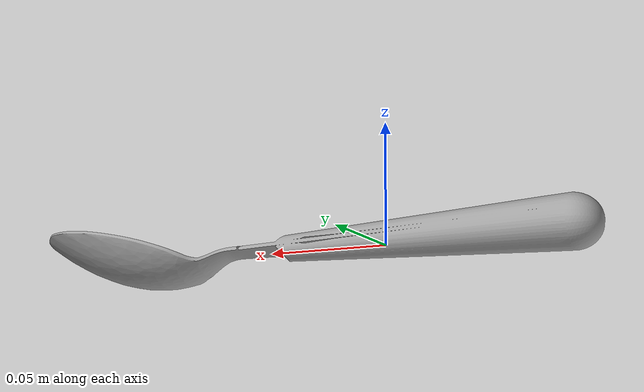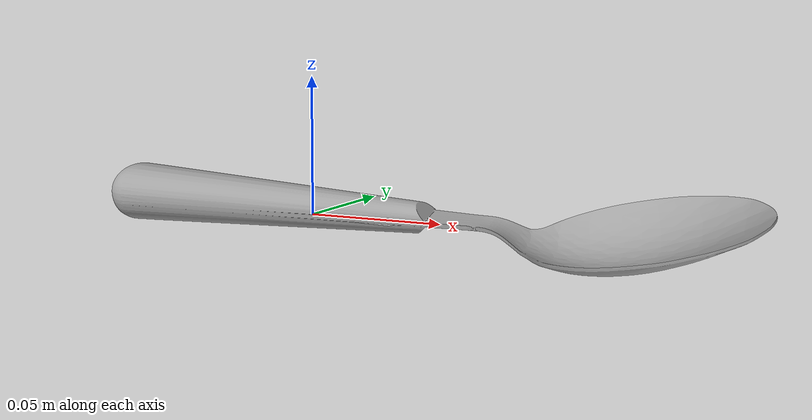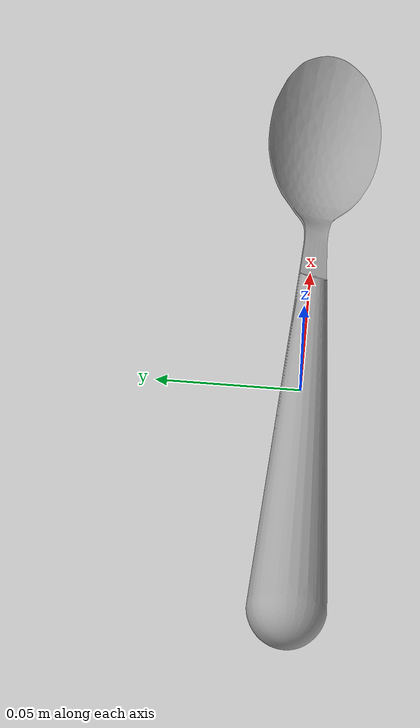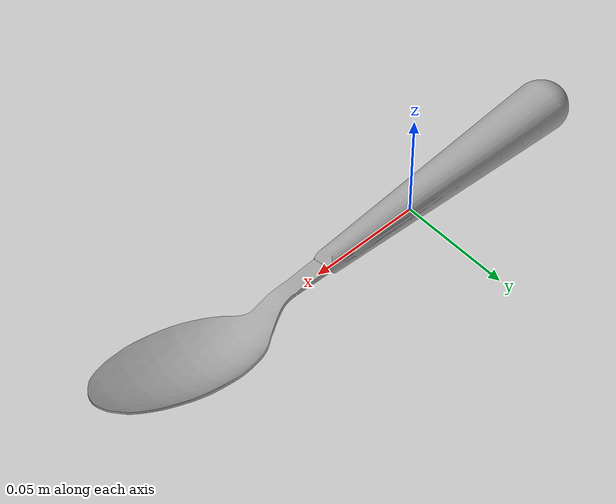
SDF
<?xml version="1.0" ?>
<sdf version="1.5">
  <model name="round_spoon">
    <static>0</static>
    <link name="link">
      <inertial>
	<pose>0.03 0.0 0.0035 0.0 0.0 0.0</pose>
        <mass>0.25</mass>
        <inertia> <!-- interias are tricky to compute -->
          <!-- http://answers.gazebosim.org/question/4372/the-inertia-matrix-explained/ -->
          <ixx>0.000033719</ixx>       <!-- for a box: ixx = 0.083 * mass * (y*y + z*z) -->
          <ixy>0.0</ixy>         <!-- for a box: ixy = 0 -->
          <ixz>0.0</ixz>         <!-- for a box: ixz = 0 -->
          <iyy>0.001305175</iyy>       <!-- for a box: iyy = 0.083 * mass * (x*x + z*z) -->
          <iyz>0.0</iyz>         <!-- for a box: iyz = 0 -->
          <izz>0.001322294</izz>       <!-- for a box: izz = 0.083 * mass * (x*x + y*y) -->
        </inertia>
      </inertial>
      <collision name="collision">
        <geometry>
          <mesh>
            <uri>model://round_spoon/meshes/round_soup_spoon.dae</uri>
          </mesh>
        </geometry>
      </collision>
      <visual name="visual">
        <geometry>
          <mesh>
            <uri>model://round_spoon/meshes/round_soup_spoon.dae</uri>
          </mesh>
        </geometry>
      </visual>
    </link>
  </model>
</sdf>
